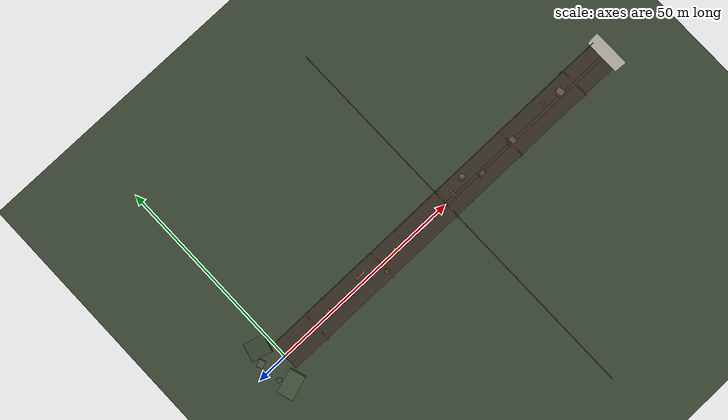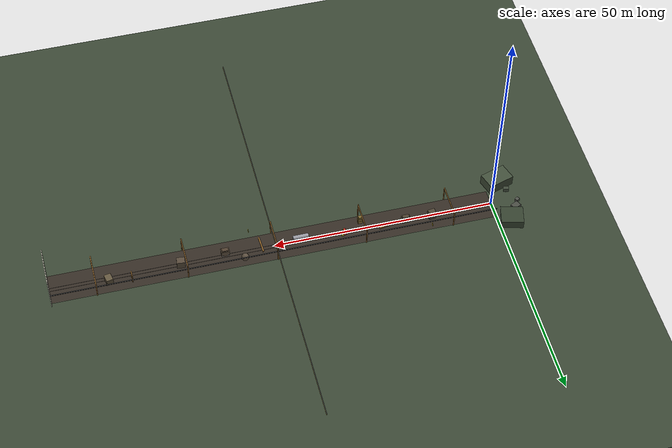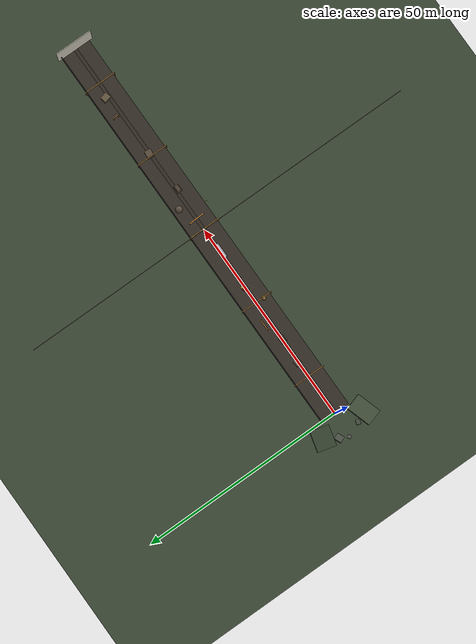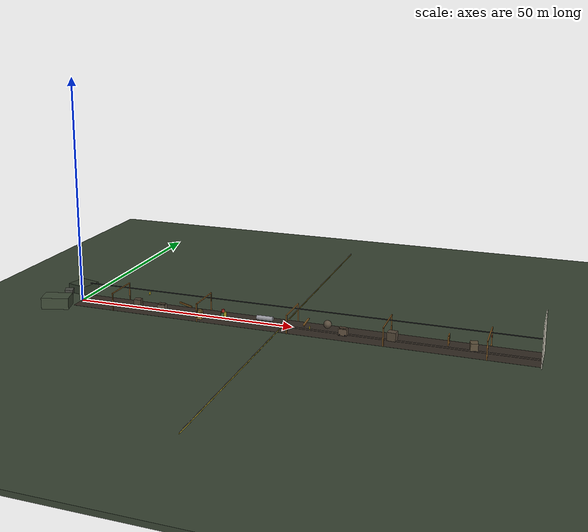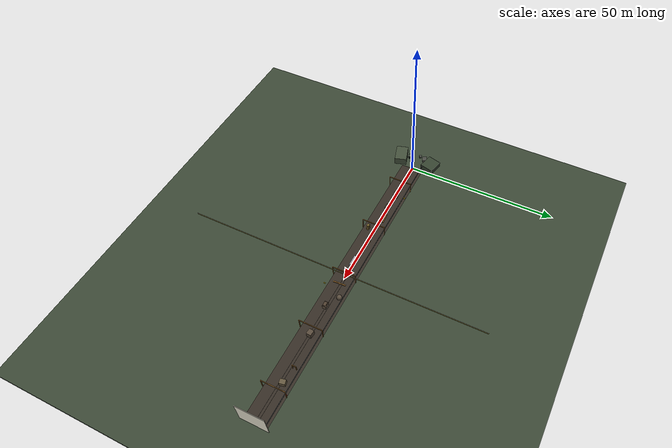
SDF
<sdf version="1.7">
 <world name="default">
  <model name="rock_pile_01">
   <static>1</static>
   <link name="link">
    <collision name="c"><geometry><box><size>1.6 1.4 1.8</size></box></geometry></collision>
    <visual name="v">
     <geometry><box><size>1.6 1.4 1.8</size></box></geometry>
     <material><ambient>0.25 0.22 0.18 1</ambient><diffuse>0.30 0.26 0.20 1</diffuse></material>
    </visual>
   </link>
   <pose>14.0 0.3 0.9 0 0 0.15</pose>
  </model>
  <model name="mine_cart_01">
   <static>1</static>
   <link name="link">
    <collision name="cart_body">
     <pose>0 0 0.7 0 0 0</pose>
     <geometry><box><size>1.8 1.2 1.4</size></box></geometry>
    </collision>
    <visual name="cart_body_v">
     <pose>0 0 0.7 0 0 0</pose>
     <geometry><box><size>1.8 1.2 1.4</size></box></geometry>
     <material><ambient>0.35 0.30 0.25 1</ambient><diffuse>0.40 0.35 0.28 1</diffuse></material>
    </visual>
    <visual name="ore_load">
     <pose>0 0 1.5 0 0 0</pose>
     <geometry><box><size>1.5 0.9 0.2</size></box></geometry>
     <material><ambient>0.20 0.18 0.15 1</ambient><diffuse>0.28 0.24 0.18 1</diffuse></material>
    </visual>
    <collision name="ore_c">
     <pose>0 0 1.5 0 0 0</pose>
     <geometry><box><size>1.5 0.9 0.2</size></box></geometry>
    </collision>
    <visual name="wheel_fl">
     <pose>0.6 0.65 0.15 1.5708 0 0</pose>
     <geometry><cylinder><radius>0.15</radius><length>0.08</length></cylinder></geometry>
     <material><ambient>0.15 0.15 0.15 1</ambient></material>
    </visual>
    <visual name="wheel_fr">
     <pose>0.6 -0.65 0.15 1.5708 0 0</pose>
     <geometry><cylinder><radius>0.15</radius><length>0.08</length></cylinder></geometry>
     <material><ambient>0.15 0.15 0.15 1</ambient></material>
    </visual>
    <visual name="wheel_rl">
     <pose>-0.6 0.65 0.15 1.5708 0 0</pose>
     <geometry><cylinder><radius>0.15</radius><length>0.08</length></cylinder></geometry>
     <material><ambient>0.15 0.15 0.15 1</ambient></material>
    </visual>
    <visual name="wheel_rr">
     <pose>-0.6 -0.65 0.15 1.5708 0 0</pose>
     <geometry><cylinder><radius>0.15</radius><length>0.08</length></cylinder></geometry>
     <material><ambient>0.15 0.15 0.15 1</ambient></material>
    </visual>
   </link>
   <pose>20.0 0.0 0.0 0 0 0</pose>
  </model>
  <model name="timber_beam_01">
   <static>1</static>
   <link name="link">
    <collision name="c"><geometry><box><size>3.0 0.30 0.30</size></box></geometry></collision>
    <visual name="v">
     <geometry><box><size>3.0 0.30 0.30</size></box></geometry>
     <material><ambient>0.45 0.30 0.12 1</ambient><diffuse>0.55 0.38 0.15 1</diffuse></material>
    </visual>
   </link>
   <pose>25.0 1.5 1.4 0 0.25 0</pose>
  </model>
  <model name="crate_stack_01">
   <static>1</static>
   <link name="link">
    <collision name="c1">
     <pose>0 0 0.4 0 0 0</pose>
     <geometry><box><size>1.0 0.8 0.8</size></box></geometry>
    </collision>
    <visual name="v1">
     <pose>0 0 0.4 0 0 0</pose>
     <geometry><box><size>1.0 0.8 0.8</size></box></geometry>
     <material><ambient>0.50 0.42 0.20 1</ambient><diffuse>0.55 0.45 0.22 1</diffuse></material>
    </visual>
    <collision name="c2">
     <pose>0.05 0.03 1.1 0 0 0.05</pose>
     <geometry><box><size>0.95 0.75 0.8</size></box></geometry>
    </collision>
    <visual name="v2">
     <pose>0.05 0.03 1.1 0 0 0.05</pose>
     <geometry><box><size>0.95 0.75 0.8</size></box></geometry>
     <material><ambient>0.48 0.40 0.18 1</ambient><diffuse>0.52 0.43 0.20 1</diffuse></material>
    </visual>
    <collision name="c3">
     <pose>-0.05 0.05 1.75 0 0 -0.08</pose>
     <geometry><box><size>0.85 0.7 0.5</size></box></geometry>
    </collision>
    <visual name="v3">
     <pose>-0.05 0.05 1.75 0 0 -0.08</pose>
     <geometry><box><size>0.85 0.7 0.5</size></box></geometry>
     <material><ambient>0.45 0.38 0.16 1</ambient><diffuse>0.50 0.42 0.19 1</diffuse></material>
    </visual>
   </link>
   <pose>30.0 -2.0 0.0 0 0 0</pose>
  </model>
  <model name="barrel_cluster_01">
   <static>1</static>
   <link name="link">
    <collision name="b1">
     <pose>0 0 0.6 0 0 0</pose>
     <geometry><cylinder><radius>0.32</radius><length>1.2</length></cylinder></geometry>
    </collision>
    <visual name="b1v">
     <pose>0 0 0.6 0 0 0</pose>
     <geometry><cylinder><radius>0.32</radius><length>1.2</length></cylinder></geometry>
     <material><ambient>0.60 0.15 0.10 1</ambient><diffuse>0.70 0.18 0.12 1</diffuse></material>
    </visual>
    <collision name="b2">
     <pose>0.58 0.15 0.6 0 0 0</pose>
     <geometry><cylinder><radius>0.32</radius><length>1.2</length></cylinder></geometry>
    </collision>
    <visual name="b2v">
     <pose>0.58 0.15 0.6 0 0 0</pose>
     <geometry><cylinder><radius>0.32</radius><length>1.2</length></cylinder></geometry>
     <material><ambient>0.55 0.55 0.10 1</ambient><diffuse>0.65 0.60 0.12 1</diffuse></material>
    </visual>
    <collision name="b3">
     <pose>0.25 -0.50 0.6 0 0 0</pose>
     <geometry><cylinder><radius>0.32</radius><length>1.2</length></cylinder></geometry>
    </collision>
    <visual name="b3v">
     <pose>0.25 -0.50 0.6 0 0 0</pose>
     <geometry><cylinder><radius>0.32</radius><length>1.2</length></cylinder></geometry>
     <material><ambient>0.20 0.35 0.20 1</ambient><diffuse>0.25 0.40 0.22 1</diffuse></material>
    </visual>
    <collision name="b4">
     <pose>0.25 0.0 1.5 0 0 0</pose>
     <geometry><cylinder><radius>0.30</radius><length>0.6</length></cylinder></geometry>
    </collision>
    <visual name="b4v">
     <pose>0.25 0.0 1.5 0 0 0</pose>
     <geometry><cylinder><radius>0.30</radius><length>0.6</length></cylinder></geometry>
     <material><ambient>0.60 0.15 0.10 1</ambient><diffuse>0.70 0.18 0.12 1</diffuse></material>
    </visual>
   </link>
   <pose>34.0 0.5 0.0 0 0 0</pose>
  </model>
  <model name="vent_duct_01">
   <static>1</static>
   <link name="link">
    <collision name="c">
     <pose>0 0 0 0 1.5708 0</pose>
     <geometry><cylinder><radius>0.50</radius><length>3.5</length></cylinder></geometry>
    </collision>
    <visual name="v">
     <pose>0 0 0 0 1.5708 0</pose>
     <geometry><cylinder><radius>0.50</radius><length>3.5</length></cylinder></geometry>
     <material><ambient>0.50 0.50 0.52 1</ambient><diffuse>0.60 0.60 0.63 1</diffuse></material>
    </visual>
    <visual name="bracket1">
     <pose>-1.2 0 -0.6 0 0 0</pose>
     <geometry><box><size>0.10 0.10 1.2</size></box></geometry>
     <material><ambient>0.30 0.30 0.32 1</ambient></material>
    </visual>
    <collision name="br1">
     <pose>-1.2 0 -0.6 0 0 0</pose>
     <geometry><box><size>0.10 0.10 1.2</size></box></geometry>
    </collision>
    <visual name="bracket2">
     <pose>1.2 0 -0.6 0 0 0</pose>
     <geometry><box><size>0.10 0.10 1.2</size></box></geometry>
     <material><ambient>0.30 0.30 0.32 1</ambient></material>
    </visual>
    <collision name="br2">
     <pose>1.2 0 -0.6 0 0 0</pose>
     <geometry><box><size>0.10 0.10 1.2</size></box></geometry>
    </collision>
   </link>
   <pose>44.0 -0.2 1.3 0 0 0</pose>
  </model>
  <model name="timber_beam_02">
   <static>1</static>
   <link name="link">
    <collision name="c"><geometry><box><size>0.30 4.0 0.30</size></box></geometry></collision>
    <visual name="v">
     <geometry><box><size>0.30 4.0 0.30</size></box></geometry>
     <material><ambient>0.50 0.35 0.15 1</ambient><diffuse>0.60 0.42 0.18 1</diffuse></material>
    </visual>
   </link>
   <pose>53.0 0.0 1.5 0 0 0.05</pose>
  </model>
  <model name="rock_boulder_01">
   <static>1</static>
   <link name="link">
    <collision name="c"><geometry><sphere><radius>0.85</radius></sphere></geometry></collision>
    <visual name="v">
     <geometry><sphere><radius>0.85</radius></sphere></geometry>
     <material><ambient>0.28 0.25 0.20 1</ambient><diffuse>0.35 0.30 0.24 1</diffuse></material>
    </visual>
   </link>
   <pose>57.0 2.0 0.85 0 0 0</pose>
  </model>
  <model name="mine_cart_02">
   <static>1</static>
   <link name="link">
    <collision name="cart_body">
     <pose>0 0 0.7 0 0 0</pose>
     <geometry><box><size>1.8 1.2 1.4</size></box></geometry>
    </collision>
    <visual name="cart_body_v">
     <pose>0 0 0.7 0 0 0</pose>
     <geometry><box><size>1.8 1.2 1.4</size></box></geometry>
     <material><ambient>0.32 0.28 0.22 1</ambient><diffuse>0.38 0.32 0.25 1</diffuse></material>
    </visual>
    <visual name="ore">
     <pose>0 0 1.5 0 0 0</pose>
     <geometry><box><size>1.4 0.9 0.2</size></box></geometry>
     <material><ambient>0.22 0.18 0.14 1</ambient><diffuse>0.30 0.24 0.18 1</diffuse></material>
    </visual>
    <collision name="ore_c">
     <pose>0 0 1.5 0 0 0</pose>
     <geometry><box><size>1.4 0.9 0.2</size></box></geometry>
    </collision>
    <visual name="wfl">
     <pose>0.6 0.65 0.15 1.5708 0 0</pose>
     <geometry><cylinder><radius>0.15</radius><length>0.08</length></cylinder></geometry>
     <material><ambient>0.15 0.15 0.15 1</ambient></material>
    </visual>
    <visual name="wfr">
     <pose>0.6 -0.65 0.15 1.5708 0 0</pose>
     <geometry><cylinder><radius>0.15</radius><length>0.08</length></cylinder></geometry>
     <material><ambient>0.15 0.15 0.15 1</ambient></material>
    </visual>
    <visual name="wrl">
     <pose>-0.6 0.65 0.15 1.5708 0 0</pose>
     <geometry><cylinder><radius>0.15</radius><length>0.08</length></cylinder></geometry>
     <material><ambient>0.15 0.15 0.15 1</ambient></material>
    </visual>
    <visual name="wrr">
     <pose>-0.6 -0.65 0.15 1.5708 0 0</pose>
     <geometry><cylinder><radius>0.15</radius><length>0.08</length></cylinder></geometry>
     <material><ambient>0.15 0.15 0.15 1</ambient></material>
    </visual>
   </link>
   <pose>61.0 -0.5 0.0 0 0 0</pose>
  </model>
  <model name="rock_pile_02">
   <static>1</static>
   <link name="link">
    <collision name="c"><geometry><box><size>1.8 1.6 1.8</size></box></geometry></collision>
    <visual name="v">
     <geometry><box><size>1.8 1.6 1.8</size></box></geometry>
     <material><ambient>0.28 0.24 0.18 1</ambient><diffuse>0.33 0.28 0.22 1</diffuse></material>
    </visual>
   </link>
   <pose>71.0 0.2 0.9 0 0 -0.1</pose>
  </model>
  <model name="timber_frame_01">
   <static>1</static>
   <link name="link">
    <collision name="lp">
     <pose>0 -0.6 1.0 0 0 0</pose>
     <geometry><box><size>0.20 0.20 2.0</size></box></geometry>
    </collision>
    <visual name="lpv">
     <pose>0 -0.6 1.0 0 0 0</pose>
     <geometry><box><size>0.20 0.20 2.0</size></box></geometry>
     <material><ambient>0.50 0.35 0.15 1</ambient><diffuse>0.60 0.42 0.18 1</diffuse></material>
    </visual>
    <collision name="rp">
     <pose>0 0.6 1.0 0 0 0</pose>
     <geometry><box><size>0.20 0.20 2.0</size></box></geometry>
    </collision>
    <visual name="rpv">
     <pose>0 0.6 1.0 0 0 0</pose>
     <geometry><box><size>0.20 0.20 2.0</size></box></geometry>
     <material><ambient>0.50 0.35 0.15 1</ambient><diffuse>0.60 0.42 0.18 1</diffuse></material>
    </visual>
    <collision name="cb">
     <pose>0 0.0 2.05 0 0 0</pose>
     <geometry><box><size>0.20 1.4 0.20</size></box></geometry>
    </collision>
    <visual name="cbv">
     <pose>0 0.0 2.05 0 0 0</pose>
     <geometry><box><size>0.20 1.4 0.20</size></box></geometry>
     <material><ambient>0.50 0.35 0.15 1</ambient><diffuse>0.60 0.42 0.18 1</diffuse></material>
    </visual>
   </link>
   <pose>82.0 1.5 0.0 0 0 0</pose>
  </model>
  <model name="rubble_02">
   <static>1</static>
   <link name="link">
    <collision name="c"><geometry><box><size>1.5 1.8 1.5</size></box></geometry></collision>
    <visual name="v">
     <geometry><box><size>1.5 1.8 1.5</size></box></geometry>
     <material><ambient>0.32 0.28 0.20 1</ambient><diffuse>0.38 0.33 0.24 1</diffuse></material>
    </visual>
   </link>
   <pose>87.0 0.8 0.75 0 0 0.2</pose>
  </model>
  <model name="support_frame_10">
   <static>1</static>
   <link name="link">
    <visual name="left_post">
     <pose>0 -3.8 2.0 0 0 0</pose>
     <geometry><box><size>0.20 0.20 4.0</size></box></geometry>
     <material><ambient>0.50 0.35 0.15 1</ambient><diffuse>0.60 0.42 0.18 1</diffuse></material>
    </visual>
    <visual name="right_post">
     <pose>0 3.8 2.0 0 0 0</pose>
     <geometry><box><size>0.20 0.20 4.0</size></box></geometry>
     <material><ambient>0.50 0.35 0.15 1</ambient><diffuse>0.60 0.42 0.18 1</diffuse></material>
    </visual>
    <visual name="crossbeam">
     <pose>0 0.0 3.9 0 0 0</pose>
     <geometry><box><size>0.20 7.8 0.20</size></box></geometry>
     <material><ambient>0.50 0.35 0.15 1</ambient><diffuse>0.60 0.42 0.18 1</diffuse></material>
    </visual>
   </link>
   <pose>10.0 0 0 0 0 0</pose>
  </model>
  <model name="support_frame_30">
   <static>1</static>
   <link name="link">
    <visual name="left_post">
     <pose>0 -3.8 2.0 0 0 0</pose>
     <geometry><box><size>0.20 0.20 4.0</size></box></geometry>
     <material><ambient>0.48 0.33 0.14 1</ambient><diffuse>0.58 0.40 0.17 1</diffuse></material>
    </visual>
    <visual name="right_post">
     <pose>0 3.8 2.0 0 0 0</pose>
     <geometry><box><size>0.20 0.20 4.0</size></box></geometry>
     <material><ambient>0.48 0.33 0.14 1</ambient><diffuse>0.58 0.40 0.17 1</diffuse></material>
    </visual>
    <visual name="crossbeam">
     <pose>0 0.0 3.9 0 0 0</pose>
     <geometry><box><size>0.20 7.8 0.20</size></box></geometry>
     <material><ambient>0.48 0.33 0.14 1</ambient><diffuse>0.58 0.40 0.17 1</diffuse></material>
    </visual>
   </link>
   <pose>30.0 0 0 0 0 0</pose>
  </model>
  <model name="support_frame_50">
   <static>1</static>
   <link name="link">
    <visual name="left_post">
     <pose>0 -3.8 2.0 0 0 0</pose>
     <geometry><box><size>0.20 0.20 4.0</size></box></geometry>
     <material><ambient>0.50 0.35 0.15 1</ambient><diffuse>0.60 0.42 0.18 1</diffuse></material>
    </visual>
    <visual name="right_post">
     <pose>0 3.8 2.0 0 0 0</pose>
     <geometry><box><size>0.20 0.20 4.0</size></box></geometry>
     <material><ambient>0.50 0.35 0.15 1</ambient><diffuse>0.60 0.42 0.18 1</diffuse></material>
    </visual>
    <visual name="crossbeam">
     <pose>0 0.0 3.9 0 0 0</pose>
     <geometry><box><size>0.20 7.8 0.20</size></box></geometry>
     <material><ambient>0.50 0.35 0.15 1</ambient><diffuse>0.60 0.42 0.18 1</diffuse></material>
    </visual>
   </link>
   <pose>50.0 0 0 0 0 0</pose>
  </model>
  <model name="support_frame_70">
   <static>1</static>
   <link name="link">
    <visual name="left_post">
     <pose>0 -3.8 2.0 0 0 0</pose>
     <geometry><box><size>0.20 0.20 4.0</size></box></geometry>
     <material><ambient>0.48 0.33 0.14 1</ambient><diffuse>0.58 0.40 0.17 1</diffuse></material>
    </visual>
    <visual name="right_post">
     <pose>0 3.8 2.0 0 0 0</pose>
     <geometry><box><size>0.20 0.20 4.0</size></box></geometry>
     <material><ambient>0.48 0.33 0.14 1</ambient><diffuse>0.58 0.40 0.17 1</diffuse></material>
    </visual>
    <visual name="crossbeam">
     <pose>0 0.0 3.9 0 0 0</pose>
     <geometry><box><size>0.20 7.8 0.20</size></box></geometry>
     <material><ambient>0.48 0.33 0.14 1</ambient><diffuse>0.58 0.40 0.17 1</diffuse></material>
    </visual>
   </link>
   <pose>70.0 0 0 0 0 0</pose>
  </model>
  <model name="support_frame_90">
   <static>1</static>
   <link name="link">
    <visual name="left_post">
     <pose>0 -3.8 2.0 0 0 0</pose>
     <geometry><box><size>0.20 0.20 4.0</size></box></geometry>
     <material><ambient>0.50 0.35 0.15 1</ambient><diffuse>0.60 0.42 0.18 1</diffuse></material>
    </visual>
    <visual name="right_post">
     <pose>0 3.8 2.0 0 0 0</pose>
     <geometry><box><size>0.20 0.20 4.0</size></box></geometry>
     <material><ambient>0.50 0.35 0.15 1</ambient><diffuse>0.60 0.42 0.18 1</diffuse></material>
    </visual>
    <visual name="crossbeam">
     <pose>0 0.0 3.9 0 0 0</pose>
     <geometry><box><size>0.20 7.8 0.20</size></box></geometry>
     <material><ambient>0.50 0.35 0.15 1</ambient><diffuse>0.60 0.42 0.18 1</diffuse></material>
    </visual>
   </link>
   <pose>90.0 0 0 0 0 0</pose>
  </model>
  <model name="rail_left">
   <static>1</static>
   <link name="link">
    <visual name="v">
     <pose>0 0 0.03 0 0 0</pose>
     <geometry><box><size>100.0 0.08 0.06</size></box></geometry>
     <material><ambient>0.45 0.40 0.35 1</ambient><diffuse>0.55 0.50 0.45 1</diffuse></material>
    </visual>
   </link>
   <pose>50.0 -0.40 0.0 0 0 0</pose>
  </model>
  <model name="rail_right">
   <static>1</static>
   <link name="link">
    <visual name="v">
     <pose>0 0 0.03 0 0 0</pose>
     <geometry><box><size>100.0 0.08 0.06</size></box></geometry>
     <material><ambient>0.45 0.40 0.35 1</ambient><diffuse>0.55 0.50 0.45 1</diffuse></material>
    </visual>
   </link>
   <pose>50.0 0.40 0.0 0 0 0</pose>
  </model>
  <model name="sleepers">
   <static>1</static>
   <link name="link">
    <visual name="s1">
     <pose>-40 0 0.015 0 0 0</pose>
     <geometry><box><size>0.15 1.2 0.03</size></box></geometry>
     <material><ambient>0.40 0.28 0.12 1</ambient><diffuse>0.50 0.35 0.15 1</diffuse></material>
    </visual>
    <visual name="s2">
     <pose>-38 0 0.015 0 0 0</pose>
     <geometry><box><size>0.15 1.2 0.03</size></box></geometry>
     <material><ambient>0.40 0.28 0.12 1</ambient><diffuse>0.50 0.35 0.15 1</diffuse></material>
    </visual>
    <visual name="s3">
     <pose>-36 0 0.015 0 0 0</pose>
     <geometry><box><size>0.15 1.2 0.03</size></box></geometry>
     <material><ambient>0.40 0.28 0.12 1</ambient><diffuse>0.50 0.35 0.15 1</diffuse></material>
    </visual>
    <visual name="s4">
     <pose>-34 0 0.015 0 0 0</pose>
     <geometry><box><size>0.15 1.2 0.03</size></box></geometry>
     <material><ambient>0.40 0.28 0.12 1</ambient><diffuse>0.50 0.35 0.15 1</diffuse></material>
    </visual>
    <visual name="s5">
     <pose>-32 0 0.015 0 0 0</pose>
     <geometry><box><size>0.15 1.2 0.03</size></box></geometry>
     <material><ambient>0.40 0.28 0.12 1</ambient><diffuse>0.50 0.35 0.15 1</diffuse></material>
    </visual>
    <visual name="s6">
     <pose>-30 0 0.015 0 0 0</pose>
     <geometry><box><size>0.15 1.2 0.03</size></box></geometry>
     <material><ambient>0.40 0.28 0.12 1</ambient><diffuse>0.50 0.35 0.15 1</diffuse></material>
    </visual>
   </link>
   <pose>50.0 0 0 0 0 0</pose>
  </model>
  <model name="pipe_run_left">
   <static>1</static>
   <link name="link">
    <visual name="pipe1">
     <geometry><cylinder><radius>0.08</radius><length>100.0</length></cylinder></geometry>
     <cast_shadows>0</cast_shadows>
     <material><ambient>0.50 0.45 0.10 1</ambient><diffuse>0.60 0.55 0.15 1</diffuse></material>
    </visual>
    <visual name="pipe2">
     <pose>0 0.25 0 0 0 0</pose>
     <geometry><cylinder><radius>0.06</radius><length>100.0</length></cylinder></geometry>
     <cast_shadows>0</cast_shadows>
     <material><ambient>0.40 0.40 0.42 1</ambient><diffuse>0.50 0.50 0.52 1</diffuse></material>
    </visual>
   </link>
   <pose>50.0 -3.6 2.5 1.5708 0 0</pose>
  </model>
  <model name="cable_tray">
   <static>1</static>
   <link name="link">
    <visual name="tray">
     <geometry><box><size>100.0 0.20 0.08</size></box></geometry>
     <material><ambient>0.25 0.25 0.28 1</ambient><diffuse>0.35 0.35 0.38 1</diffuse></material>
    </visual>
    <visual name="cables">
     <pose>0 0 0.06 0 0 0</pose>
     <geometry><box><size>100.0 0.16 0.04</size></box></geometry>
     <material><ambient>0.10 0.10 0.10 1</ambient><diffuse>0.15 0.15 0.15 1</diffuse></material>
    </visual>
   </link>
   <pose>50.0 3.7 2.8 0 0 0</pose>
  </model>
  <model name="puddle_01">
   <static>1</static>
   <link name="link">
    <visual name="v">
     <geometry><box><size>2.5 1.8 0.005</size></box></geometry>
     <material><ambient>0.15 0.18 0.25 1</ambient><diffuse>0.18 0.22 0.30 1</diffuse></material>
    </visual>
   </link>
   <pose>22.0 -0.5 0.003 0 0 0.3</pose>
  </model>
  <model name="puddle_02">
   <static>1</static>
   <link name="link">
    <visual name="v">
     <geometry><box><size>3.0 2.0 0.005</size></box></geometry>
     <material><ambient>0.15 0.18 0.25 1</ambient><diffuse>0.18 0.22 0.30 1</diffuse></material>
    </visual>
   </link>
   <pose>55.0 1.0 0.003 0 0 -0.2</pose>
  </model>
  <model name="puddle_03">
   <static>1</static>
   <link name="link">
    <visual name="v">
     <geometry><box><size>2.0 2.5 0.005</size></box></geometry>
     <material><ambient>0.15 0.18 0.25 1</ambient><diffuse>0.18 0.22 0.30 1</diffuse></material>
    </visual>
   </link>
   <pose>80.0 -1.0 0.003 0 0 0.15</pose>
  </model>
  <model name="warning_sign_1">
   <static>1</static>
   <link name="link">
    <visual name="v">
     <geometry><box><size>0.02 0.6 0.6</size></box></geometry>
     <material><ambient>0.70 0.60 0.05 1</ambient><diffuse>0.85 0.75 0.10 1</diffuse></material>
    </visual>
   </link>
   <pose>15.0 3.95 2.0 0 0 0</pose>
  </model>
  <model name="warning_sign_2">
   <static>1</static>
   <link name="link">
    <visual name="v">
     <geometry><box><size>0.02 0.6 0.6</size></box></geometry>
     <material><ambient>0.70 0.60 0.05 1</ambient><diffuse>0.85 0.75 0.10 1</diffuse></material>
    </visual>
   </link>
   <pose>55.0 -3.95 2.0 0 0 0</pose>
  </model>
  <model name="warning_sign_3">
   <static>1</static>
   <link name="link">
    <visual name="v">
     <geometry><box><size>0.02 0.6 0.6</size></box></geometry>
     <material><ambient>0.70 0.10 0.05 1</ambient><diffuse>0.85 0.12 0.08 1</diffuse></material>
    </visual>
   </link>
   <pose>90.0 3.95 2.0 0 0 0</pose>
  </model>
  <model name="ground_plane">
   <static>1</static>
   <link name="ground_link">
    <collision name="ground_collision">
     <pose>50 0 -0.5 0 0 0</pose>
     <geometry><box><size>400 400 1.0</size></box></geometry>
     <max_contacts>100</max_contacts>
     <surface>
      <contact><ode><soft_cfm>0</soft_cfm><soft_erp>0.8</soft_erp></ode></contact>
      <bounce><restitution_coefficient>0</restitution_coefficient></bounce>
      <friction><ode><mu>50</mu><mu2>50</mu2></ode></friction>
     </surface>
    </collision>
    <visual name="ground_visual">
     <pose>50 0 -0.5 0 0 0</pose>
     <geometry><box><size>400 400 1.0</size></box></geometry>
     <material>
      <ambient>0.18 0.22 0.16 1</ambient>
      <diffuse>0.22 0.27 0.20 1</diffuse>
      <specular>0.04 0.05 0.04 1</specular>
     </material>
    </visual>
   </link>
  </model>
  <model name="rock_mound_left">
   <static>1</static>
   <link name="link">
    <visual name="v">
     <geometry><box><size>6.0 4.0 2.5</size></box></geometry>
     <material>
      <ambient>0.20 0.24 0.18 1</ambient>
      <diffuse>0.25 0.30 0.22 1</diffuse>
      <specular>0.05 0.06 0.04 1</specular>
     </material>
    </visual>
   </link>
   <pose>-3.0 -5.5 1.25 0 0 0.3</pose>
  </model>
  <model name="rock_mound_right">
   <static>1</static>
   <link name="link">
    <visual name="v">
     <geometry><box><size>5.0 4.5 2.0</size></box></geometry>
     <material>
      <ambient>0.16 0.20 0.15 1</ambient>
      <diffuse>0.20 0.25 0.18 1</diffuse>
      <specular>0.04 0.05 0.03 1</specular>
     </material>
    </visual>
   </link>
   <pose>-3.0 5.5 1.0 0 0 -0.25</pose>
  </model>
  <model name="boulder_a">
   <static>1</static>
   <link name="link">
    <visual name="v">
     <geometry><box><size>1.8 1.5 1.2</size></box></geometry>
     <material><ambient>0.22 0.23 0.21 1</ambient><diffuse>0.28 0.29 0.26 1</diffuse></material>
    </visual>
   </link>
   <pose>-5.0 2.5 0.6 0.1 0.05 0.4</pose>
  </model>
  <model name="boulder_b">
   <static>1</static>
   <link name="link">
    <visual name="v">
     <geometry><box><size>1.2 1.0 0.9</size></box></geometry>
     <material><ambient>0.19 0.22 0.17 1</ambient><diffuse>0.24 0.28 0.22 1</diffuse></material>
    </visual>
   </link>
   <pose>-4.5 -3.0 0.45 0 0.1 -0.3</pose>
  </model>
  <model name="boulder_c">
   <static>1</static>
   <link name="link">
    <visual name="v">
     <geometry><box><size>0.9 0.8 0.7</size></box></geometry>
     <material><ambient>0.24 0.25 0.22 1</ambient><diffuse>0.30 0.31 0.28 1</diffuse></material>
    </visual>
   </link>
   <pose>-6.0 0.5 0.35 0.05 0 0.6</pose>
  </model>
  <model name="tunnel_end_wall">
   <static>1</static>
   <link name="link">
    <collision name="collision"><geometry><box><size>0.15 9.15 8.5</size></box></geometry></collision>
    <visual name="visual">
     <geometry><box><size>0.15 9.15 8.5</size></box></geometry>
     <material><ambient>0.85 0.82 0.76 1</ambient><diffuse>0.92 0.90 0.83 1</diffuse></material>
    </visual>
   </link>
   <pose>100 0 4.25 0 0 0</pose>
  </model>
  <model name="tunnel_floor">
   <static>1</static>
   <link name="link">
    <visual name="visual">
     <pose>50 0 0.005 0 0 0</pose>
     <geometry><box><size>100 7.4 0.01</size></box></geometry>
     <material>
      <ambient>0.16 0.14 0.12 1</ambient>
      <diffuse>0.20 0.17 0.14 1</diffuse>
      <specular>0.03 0.02 0.02 1</specular>
     </material>
    </visual>
   </link>
  </model>
 </world>
</sdf>
